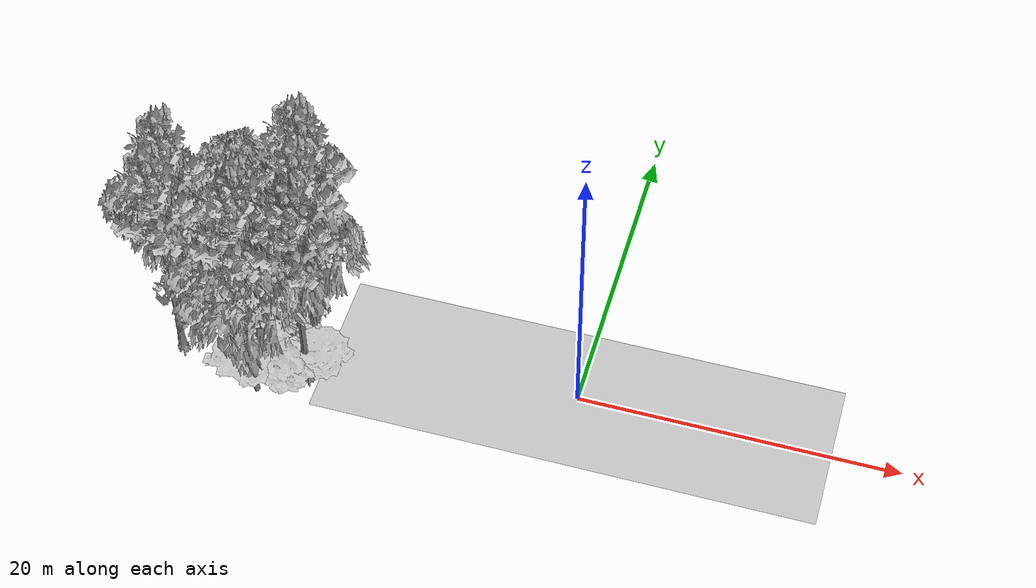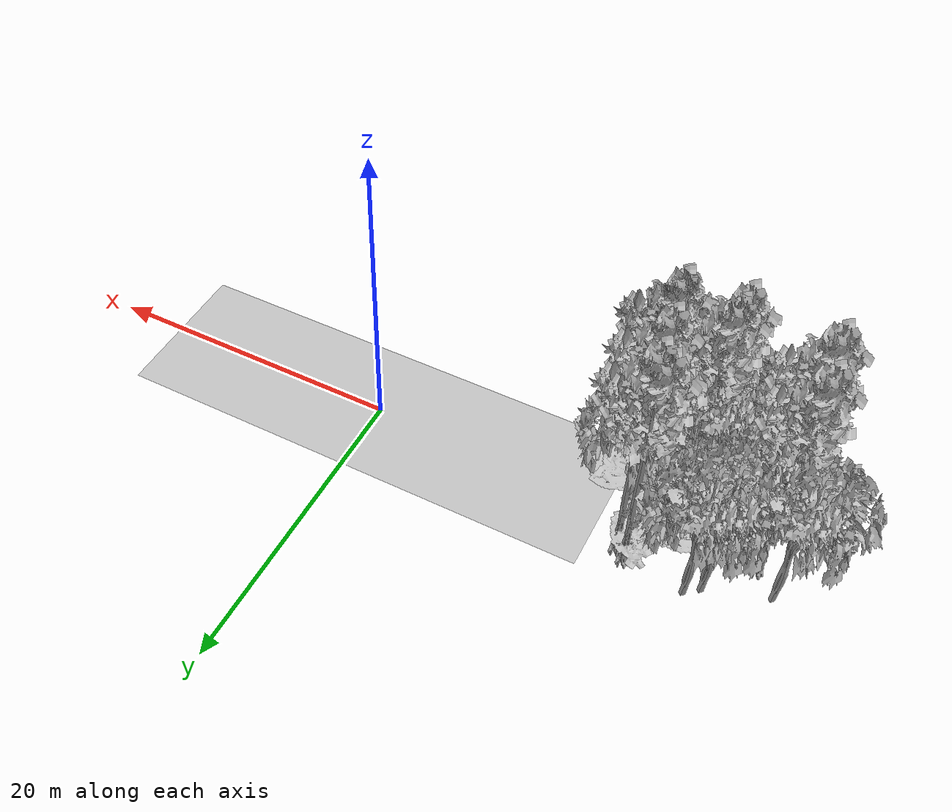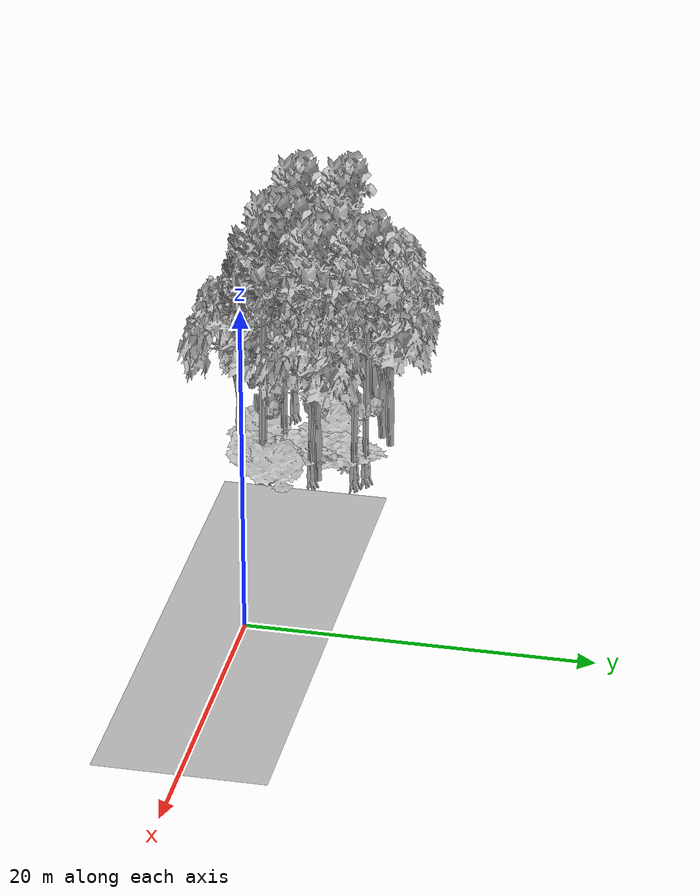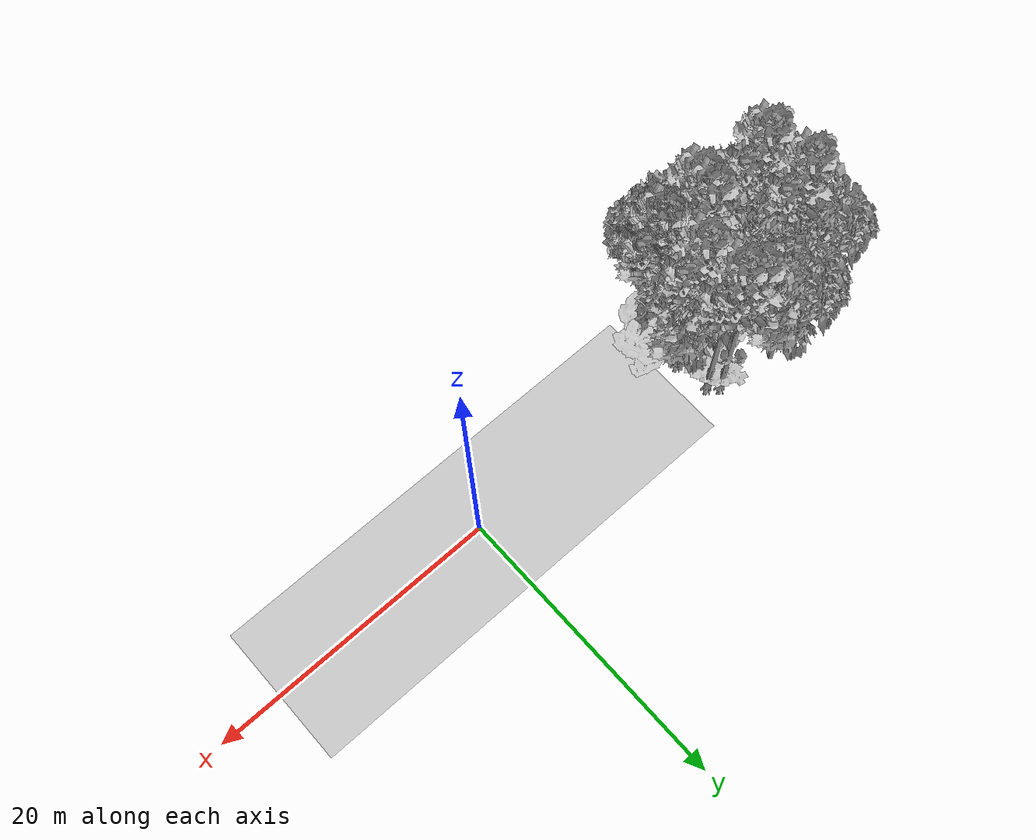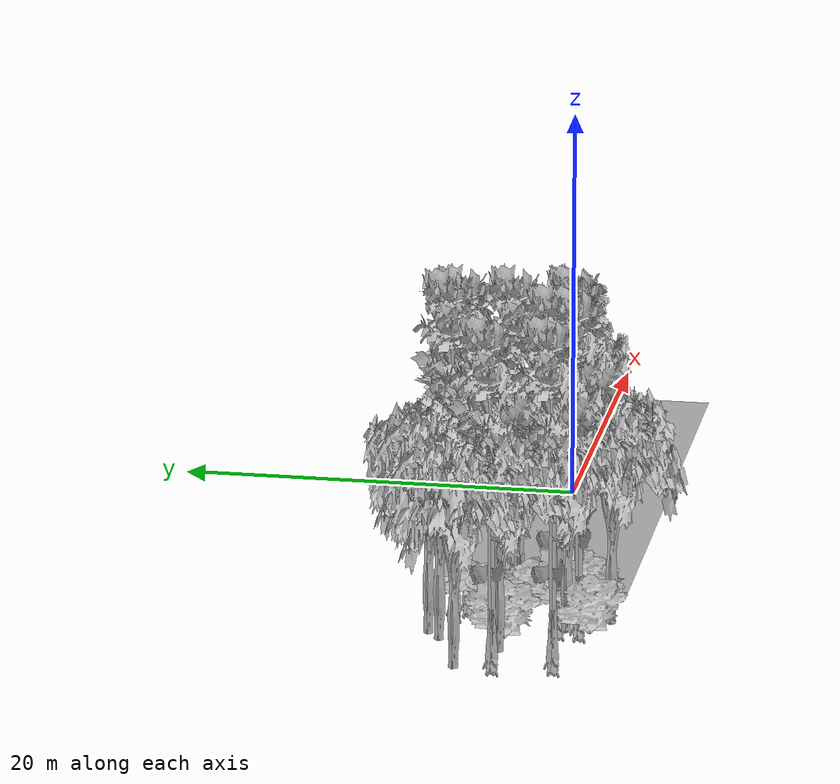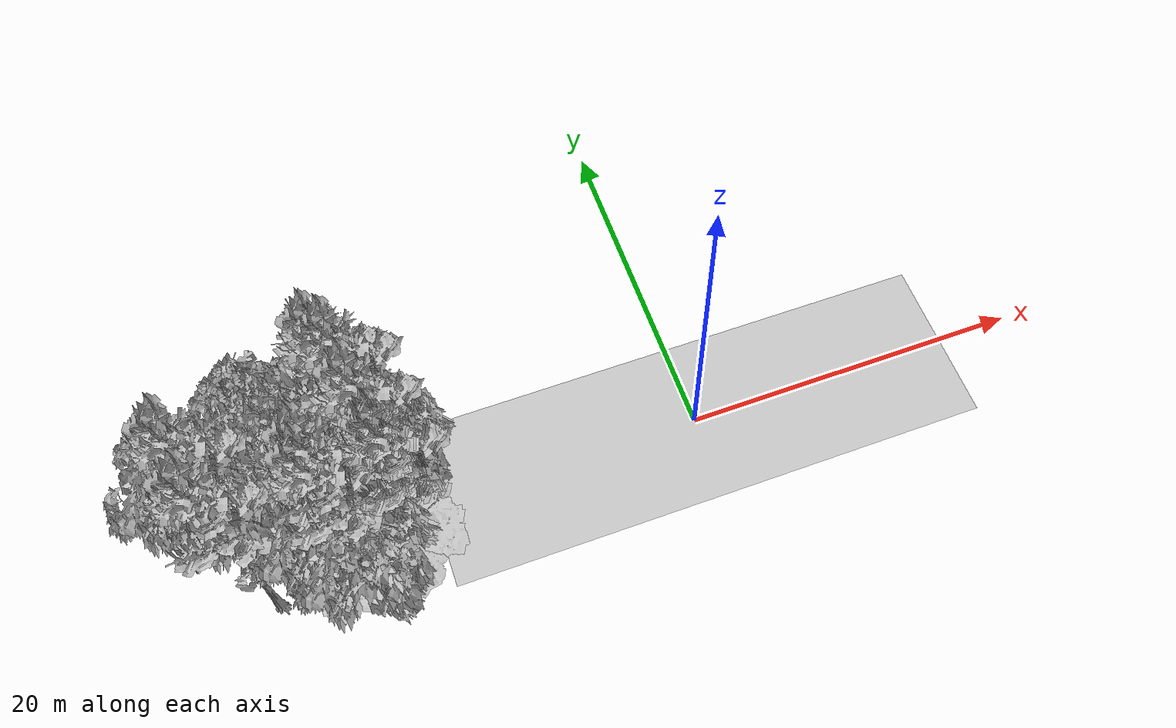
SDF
<sdf version="1.7">
 <world name="default">
  <model name="ground_plane">
   <static>1</static>
   <link name="link">
    <collision name="collision">
     <pose>-50 0 0 0 -0 0</pose>
     <geometry><plane><normal>0 0 1</normal><size>100 100</size></plane></geometry>
     <surface><contact><ode><min_depth>0.01</min_depth><max_vel>0</max_vel></ode></contact></surface>
    </collision>
    <visual name="grass">
     <cast_shadows>0</cast_shadows>
     <geometry>
      <mesh>
       <scale>0.5814285714285714 0.18142857142857144 0.1</scale>
       <uri>file://grass_plane/meshes/grass_plane.dae</uri>
      </mesh>
     </geometry>
    </visual>
   </link>
  </model>
  <model name="Tree 17">
   <static>1</static>
   <pose>-17.703643088189775 -3.0690221012463255 0 1.57079 -0 0</pose>
   <link name="link">
    <collision name="collision">
     <geometry><mesh><scale>4 2.5 4</scale><uri>model://tree_1/meshes/tree_1.obj</uri></mesh></geometry>
    </collision>
    <visual name="visual">
     <geometry><mesh><scale>4 2.5 4</scale><uri>model://tree_1/meshes/tree_1.obj</uri></mesh></geometry>
    </visual>
   </link>
  </model>
  <model name="Tree 52">
   <static>1</static>
   <pose>-17.021140823007773 0.08410831373102567 0 1.57079 -0 0</pose>
   <link name="link">
    <collision name="collision">
     <geometry><mesh><scale>3.5 5 3.5</scale><uri>model://tree_9/meshes/tree_9.obj</uri></mesh></geometry>
    </collision>
    <visual name="visual">
     <geometry><mesh><scale>3.5 5 3.5</scale><uri>model://tree_9/meshes/tree_9.obj</uri></mesh></geometry>
    </visual>
   </link>
  </model>
  <model name="Tree 81">
   <static>1</static>
   <pose>-26.66345359016277 1.8148517503028927 0 1.57079 -0 0</pose>
   <link name="link">
    <collision name="collision">
     <geometry><mesh><scale>3.5 5 3.5</scale><uri>model://tree_2/meshes/tree_2.obj</uri></mesh></geometry>
    </collision>
    <visual name="visual">
     <geometry><mesh><scale>3.5 5 3.5</scale><uri>model://tree_2/meshes/tree_2.obj</uri></mesh></geometry>
    </visual>
   </link>
  </model>
  <model name="Tree 125">
   <static>1</static>
   <pose>-17.34970389727325 2.5918983506706894 0 1.57079 -0 0</pose>
   <link name="link">
    <collision name="collision">
     <geometry><mesh><scale>3.5 5 3.5</scale><uri>model://tree_9/meshes/tree_9.obj</uri></mesh></geometry>
    </collision>
    <visual name="visual">
     <geometry><mesh><scale>3.5 5 3.5</scale><uri>model://tree_9/meshes/tree_9.obj</uri></mesh></geometry>
    </visual>
   </link>
  </model>
  <model name="Tree 144">
   <static>1</static>
   <pose>-19.74128602565117 -2.18137170894072 0 1.57079 -0 0</pose>
   <link name="link">
    <collision name="collision">
     <geometry><mesh><scale>3.5 5 3.5</scale><uri>model://tree_9/meshes/tree_9.obj</uri></mesh></geometry>
    </collision>
    <visual name="visual">
     <geometry><mesh><scale>3.5 5 3.5</scale><uri>model://tree_9/meshes/tree_9.obj</uri></mesh></geometry>
    </visual>
   </link>
  </model>
  <model name="Tree 154">
   <static>1</static>
   <pose>-20.307036931202724 -3.860278106091643 0 1.57079 -0 0</pose>
   <link name="link">
    <collision name="collision">
     <geometry><mesh><scale>3 2 3</scale><uri>model://tree_3/meshes/tree_3.obj</uri></mesh></geometry>
    </collision>
    <visual name="visual">
     <geometry><mesh><scale>3 2 3</scale><uri>model://tree_3/meshes/tree_3.obj</uri></mesh></geometry>
    </visual>
   </link>
  </model>
  <model name="Tree 185">
   <static>1</static>
   <pose>-25.211411968812392 0.19354800258094862 0 1.57079 -0 0</pose>
   <link name="link">
    <collision name="collision">
     <geometry><mesh><scale>3.5 5 3.5</scale><uri>model://tree_9/meshes/tree_9.obj</uri></mesh></geometry>
    </collision>
    <visual name="visual">
     <geometry><mesh><scale>3.5 5 3.5</scale><uri>model://tree_9/meshes/tree_9.obj</uri></mesh></geometry>
    </visual>
   </link>
  </model>
  <model name="Tree 188">
   <static>1</static>
   <pose>-17.031831514925113 0.4459458319710645 0 1.57079 -0 0</pose>
   <link name="link">
    <collision name="collision">
     <geometry><mesh><scale>3.5 5 3.5</scale><uri>model://tree_2/meshes/tree_2.obj</uri></mesh></geometry>
    </collision>
    <visual name="visual">
     <geometry><mesh><scale>3.5 5 3.5</scale><uri>model://tree_2/meshes/tree_2.obj</uri></mesh></geometry>
    </visual>
   </link>
  </model>
  <model name="Tree 268">
   <static>1</static>
   <pose>-21.651056054650166 0.14155138692395042 0 1.57079 -0 0</pose>
   <link name="link">
    <collision name="collision">
     <geometry><mesh><scale>3 2 3</scale><uri>model://tree_3/meshes/tree_3.obj</uri></mesh></geometry>
    </collision>
    <visual name="visual">
     <geometry><mesh><scale>3 2 3</scale><uri>model://tree_3/meshes/tree_3.obj</uri></mesh></geometry>
    </visual>
   </link>
  </model>
  <model name="Tree 278">
   <static>1</static>
   <pose>-18.52842753278802 1.7730151125886628 0 1.57079 -0 0</pose>
   <link name="link">
    <collision name="collision">
     <geometry><mesh><scale>4 2.5 4</scale><uri>model://tree_1/meshes/tree_1.obj</uri></mesh></geometry>
    </collision>
    <visual name="visual">
     <geometry><mesh><scale>4 2.5 4</scale><uri>model://tree_1/meshes/tree_1.obj</uri></mesh></geometry>
    </visual>
   </link>
  </model>
  <model name="Tree 286">
   <static>1</static>
   <pose>-24.78301656505908 -2.699270201673425 0 1.57079 -0 0</pose>
   <link name="link">
    <collision name="collision">
     <geometry><mesh><scale>3.5 5 3.5</scale><uri>model://tree_9/meshes/tree_9.obj</uri></mesh></geometry>
    </collision>
    <visual name="visual">
     <geometry><mesh><scale>3.5 5 3.5</scale><uri>model://tree_9/meshes/tree_9.obj</uri></mesh></geometry>
    </visual>
   </link>
  </model>
  <model name="Tree 304">
   <static>1</static>
   <pose>-18.021061466435228 3.151882861256013 0 1.57079 -0 0</pose>
   <link name="link">
    <collision name="collision">
     <geometry><mesh><scale>3.5 5 3.5</scale><uri>model://tree_9/meshes/tree_9.obj</uri></mesh></geometry>
    </collision>
    <visual name="visual">
     <geometry><mesh><scale>3.5 5 3.5</scale><uri>model://tree_9/meshes/tree_9.obj</uri></mesh></geometry>
    </visual>
   </link>
  </model>
  <model name="Tree 351">
   <static>1</static>
   <pose>-19.851685263139412 -3.231813432470105 0 1.57079 -0 0</pose>
   <link name="link">
    <collision name="collision">
     <geometry><mesh><scale>3.5 5 3.5</scale><uri>model://tree_9/meshes/tree_9.obj</uri></mesh></geometry>
    </collision>
    <visual name="visual">
     <geometry><mesh><scale>3.5 5 3.5</scale><uri>model://tree_9/meshes/tree_9.obj</uri></mesh></geometry>
    </visual>
   </link>
  </model>
  <model name="Tree 369">
   <static>1</static>
   <pose>-19.215022486185152 -4.725798506501883 0 1.57079 -0 0</pose>
   <link name="link">
    <collision name="collision">
     <geometry><mesh><scale>3.5 5 3.5</scale><uri>model://tree_2/meshes/tree_2.obj</uri></mesh></geometry>
    </collision>
    <visual name="visual">
     <geometry><mesh><scale>3.5 5 3.5</scale><uri>model://tree_2/meshes/tree_2.obj</uri></mesh></geometry>
    </visual>
   </link>
  </model>
  <model name="Tree 407">
   <static>1</static>
   <pose>-18.513496928919682 0.11324198135749874 0 1.57079 -0 0</pose>
   <link name="link">
    <collision name="collision">
     <geometry><mesh><scale>4 2.5 4</scale><uri>model://tree_1/meshes/tree_1.obj</uri></mesh></geometry>
    </collision>
    <visual name="visual">
     <geometry><mesh><scale>4 2.5 4</scale><uri>model://tree_1/meshes/tree_1.obj</uri></mesh></geometry>
    </visual>
   </link>
  </model>
  <model name="Tree 416">
   <static>1</static>
   <pose>-22.023962569124162 3.790124297576437 0 1.57079 -0 0</pose>
   <link name="link">
    <collision name="collision">
     <geometry><mesh><scale>3.5 5 3.5</scale><uri>model://tree_2/meshes/tree_2.obj</uri></mesh></geometry>
    </collision>
    <visual name="visual">
     <geometry><mesh><scale>3.5 5 3.5</scale><uri>model://tree_2/meshes/tree_2.obj</uri></mesh></geometry>
    </visual>
   </link>
  </model>
  <model name="Tree 419">
   <static>1</static>
   <pose>-16.588860857258247 -2.698870032933254 0 1.57079 -0 0</pose>
   <link name="link">
    <collision name="collision">
     <geometry><mesh><scale>3.5 5 3.5</scale><uri>model://tree_9/meshes/tree_9.obj</uri></mesh></geometry>
    </collision>
    <visual name="visual">
     <geometry><mesh><scale>3.5 5 3.5</scale><uri>model://tree_9/meshes/tree_9.obj</uri></mesh></geometry>
    </visual>
   </link>
  </model>
  <model name="Tree 459">
   <static>1</static>
   <pose>-20.750927035216197 -2.7667341386618034 0 1.57079 -0 0</pose>
   <link name="link">
    <collision name="collision">
     <geometry><mesh><scale>3.5 5 3.5</scale><uri>model://tree_2/meshes/tree_2.obj</uri></mesh></geometry>
    </collision>
    <visual name="visual">
     <geometry><mesh><scale>3.5 5 3.5</scale><uri>model://tree_2/meshes/tree_2.obj</uri></mesh></geometry>
    </visual>
   </link>
  </model>
  <model name="Tree 462">
   <static>1</static>
   <pose>-22.867179579466086 3.1317966398008394 0 1.57079 -0 0</pose>
   <link name="link">
    <collision name="collision">
     <geometry><mesh><scale>3.5 5 3.5</scale><uri>model://tree_2/meshes/tree_2.obj</uri></mesh></geometry>
    </collision>
    <visual name="visual">
     <geometry><mesh><scale>3.5 5 3.5</scale><uri>model://tree_2/meshes/tree_2.obj</uri></mesh></geometry>
    </visual>
   </link>
  </model>
  <model name="Tree 471">
   <static>1</static>
   <pose>-16.27430879911889 -2.141711679693035 0 1.57079 -0 0</pose>
   <link name="link">
    <collision name="collision">
     <geometry><mesh><scale>3 2 3</scale><uri>model://tree_3/meshes/tree_3.obj</uri></mesh></geometry>
    </collision>
    <visual name="visual">
     <geometry><mesh><scale>3 2 3</scale><uri>model://tree_3/meshes/tree_3.obj</uri></mesh></geometry>
    </visual>
   </link>
  </model>
  <model name="Tree 491">
   <static>1</static>
   <pose>-24.068687855326235 0.027352817764015214 0 1.57079 -0 0</pose>
   <link name="link">
    <collision name="collision">
     <geometry><mesh><scale>3.5 5 3.5</scale><uri>model://tree_2/meshes/tree_2.obj</uri></mesh></geometry>
    </collision>
    <visual name="visual">
     <geometry><mesh><scale>3.5 5 3.5</scale><uri>model://tree_2/meshes/tree_2.obj</uri></mesh></geometry>
    </visual>
   </link>
  </model>
  <model name="Tree 498">
   <static>1</static>
   <pose>-16.481146752878253 -2.776054288299763 0 1.57079 -0 0</pose>
   <link name="link">
    <collision name="collision">
     <geometry><mesh><scale>3.5 5 3.5</scale><uri>model://tree_9/meshes/tree_9.obj</uri></mesh></geometry>
    </collision>
    <visual name="visual">
     <geometry><mesh><scale>3.5 5 3.5</scale><uri>model://tree_9/meshes/tree_9.obj</uri></mesh></geometry>
    </visual>
   </link>
  </model>
 </world>
</sdf>
